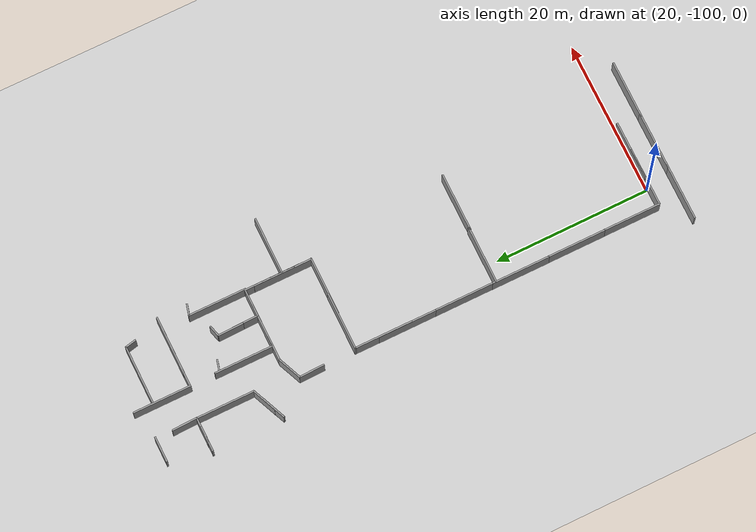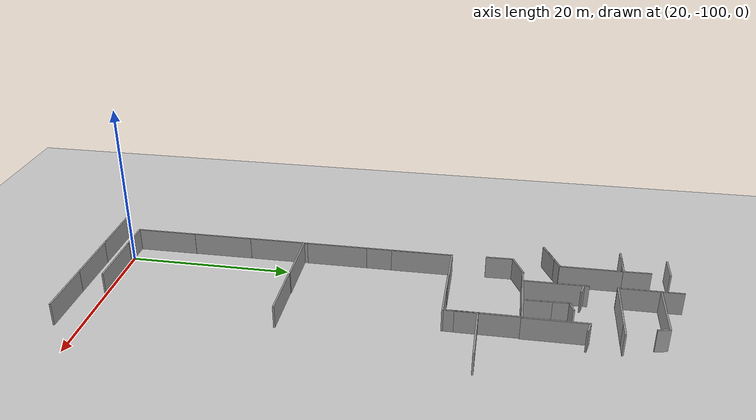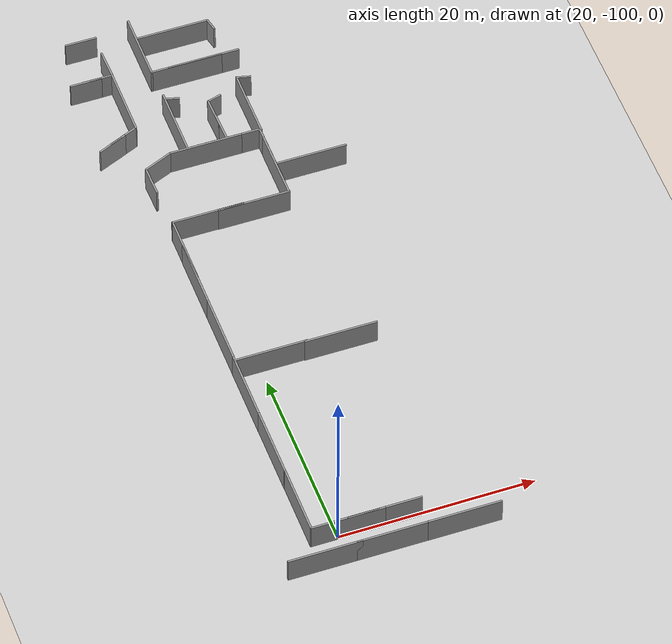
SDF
<sdf version="1.7">
 <world name="default">
  <model name="ground_plane">
   <static>1</static>
   <link name="link">
    <collision name="collision">
     <geometry><plane><normal>0 0 1</normal><size>100 100</size></plane></geometry>
     <surface>
      <contact><collide_bitmask>65535</collide_bitmask></contact>
      <friction><ode><mu>100</mu><mu2>50</mu2></ode></friction>
     </surface>
    </collision>
    <visual name="visual">
     <cast_shadows>0</cast_shadows>
     <geometry><plane><normal>0 0 1</normal><size>100 100</size></plane></geometry>
     <material>
      <script><uri>file://media/materials/scripts/gazebo.material</uri><name>Gazebo/Grey</name></script>
     </material>
    </visual>
   </link>
  </model>
  <model name="half_grey_wall_clone_clone_0_clone_clone_clone_clone_2_clone_clone_1_clone">
   <link name="link">
    <pose>0 0 1.4 0 -0 0</pose>
    <inertial>
     <mass>1</mass>
     <inertia><ixx>1</ixx><ixy>0</ixy><ixz>0</ixz><iyy>1</iyy><iyz>0</iyz><izz>1</izz></inertia>
    </inertial>
    <visual name="visual">
     <cast_shadows>0</cast_shadows>
     <geometry><box><size>3.3 0.2 2.8</size></box></geometry>
     <material>
      <script>
       <uri>model://grey_wall/materials/scripts</uri>
       <uri>model://grey_wall/materials/textures</uri>
       <name>vrc/grey_wall</name>
      </script>
      <shader type="pixel"><normal_map>__default__</normal_map></shader>
      <ambient>1 1 1 1</ambient>
      <diffuse>1 1 1 1</diffuse>
      <specular>0 0 0 1</specular>
      <emissive>0 0 0 1</emissive>
     </material>
    </visual>
    <collision name="collision">
     <geometry><box><size>3.3 0.2 2.8</size></box></geometry>
     <surface>
      <friction>
       <ode><mu>1</mu><mu2>1</mu2><fdir1>0 0 0</fdir1><slip1>0</slip1><slip2>0</slip2></ode>
       <torsional>
        <coefficient>1</coefficient>
        <patch_radius>0</patch_radius>
        <surface_radius>0</surface_radius>
        <use_patch_radius>1</use_patch_radius>
        <ode><slip>0</slip></ode>
       </torsional>
      </friction>
      <bounce><restitution_coefficient>0</restitution_coefficient><threshold>1e+06</threshold></bounce>
      <contact>
       <collide_without_contact>0</collide_without_contact>
       <collide_without_contact_bitmask>1</collide_without_contact_bitmask>
       <collide_bitmask>1</collide_bitmask>
       <ode>
        <soft_cfm>0</soft_cfm>
        <soft_erp>0.2</soft_erp>
        <kp>1e+13</kp>
        <kd>1</kd>
        <max_vel>0.01</max_vel>
        <min_depth>0</min_depth>
       </ode>
       <bullet>
        <split_impulse>1</split_impulse>
        <split_impulse_penetration_threshold>-0.01</split_impulse_penetration_threshold>
        <soft_cfm>0</soft_cfm>
        <soft_erp>0.2</soft_erp>
        <kp>1e+13</kp>
        <kd>1</kd>
       </bullet>
      </contact>
     </surface>
    </collision>
   </link>
   <static>1</static>
   <pose>16.3179 -34.2697 0 0 -0 3.13943</pose>
  </model>
  <model name="half_grey_wall_clone_clone_0_clone_clone_clone_clone_0_clone_0_clone_clone_1_clone_clone_clone_0_clone">
   <link name="link">
    <pose>0 0 1.4 0 -0 0</pose>
    <inertial>
     <mass>1</mass>
     <inertia><ixx>1</ixx><ixy>0</ixy><ixz>0</ixz><iyy>1</iyy><iyz>0</iyz><izz>1</izz></inertia>
    </inertial>
    <visual name="visual">
     <cast_shadows>0</cast_shadows>
     <geometry><box><size>3.3 0.2 2.8</size></box></geometry>
     <material>
      <script>
       <uri>model://grey_wall/materials/scripts</uri>
       <uri>model://grey_wall/materials/textures</uri>
       <name>vrc/grey_wall</name>
      </script>
      <shader type="pixel"><normal_map>__default__</normal_map></shader>
      <ambient>1 1 1 1</ambient>
      <diffuse>1 1 1 1</diffuse>
      <specular>0 0 0 1</specular>
      <emissive>0 0 0 1</emissive>
     </material>
    </visual>
    <collision name="collision">
     <geometry><box><size>3.3 0.2 2.8</size></box></geometry>
     <surface>
      <friction>
       <ode><mu>1</mu><mu2>1</mu2><fdir1>0 0 0</fdir1><slip1>0</slip1><slip2>0</slip2></ode>
       <torsional>
        <coefficient>1</coefficient>
        <patch_radius>0</patch_radius>
        <surface_radius>0</surface_radius>
        <use_patch_radius>1</use_patch_radius>
        <ode><slip>0</slip></ode>
       </torsional>
      </friction>
      <bounce><restitution_coefficient>0</restitution_coefficient><threshold>1e+06</threshold></bounce>
      <contact>
       <collide_without_contact>0</collide_without_contact>
       <collide_without_contact_bitmask>1</collide_without_contact_bitmask>
       <collide_bitmask>1</collide_bitmask>
       <ode>
        <soft_cfm>0</soft_cfm>
        <soft_erp>0.2</soft_erp>
        <kp>1e+13</kp>
        <kd>1</kd>
        <max_vel>0.01</max_vel>
        <min_depth>0</min_depth>
       </ode>
       <bullet>
        <split_impulse>1</split_impulse>
        <split_impulse_penetration_threshold>-0.01</split_impulse_penetration_threshold>
        <soft_cfm>0</soft_cfm>
        <soft_erp>0.2</soft_erp>
        <kp>1e+13</kp>
        <kd>1</kd>
       </bullet>
      </contact>
     </surface>
    </collision>
   </link>
   <static>1</static>
   <pose>17.8257 -38.046 -0 0 0 -1.5482</pose>
  </model>
  <model name="half_grey_wall_clone_clone_0_clone_clone_clone_clone_2_clone_clone_1_clone_clone">
   <link name="link">
    <pose>0 0 1.4 0 -0 0</pose>
    <inertial>
     <mass>1</mass>
     <inertia><ixx>1</ixx><ixy>0</ixy><ixz>0</ixz><iyy>1</iyy><iyz>0</iyz><izz>1</izz></inertia>
    </inertial>
    <visual name="visual">
     <cast_shadows>0</cast_shadows>
     <geometry><box><size>3.3 0.2 2.8</size></box></geometry>
     <material>
      <script>
       <uri>model://grey_wall/materials/scripts</uri>
       <uri>model://grey_wall/materials/textures</uri>
       <name>vrc/grey_wall</name>
      </script>
      <shader type="pixel"><normal_map>__default__</normal_map></shader>
      <ambient>1 1 1 1</ambient>
      <diffuse>1 1 1 1</diffuse>
      <specular>0 0 0 1</specular>
      <emissive>0 0 0 1</emissive>
     </material>
    </visual>
    <collision name="collision">
     <geometry><box><size>3.3 0.2 2.8</size></box></geometry>
     <surface>
      <friction>
       <ode><mu>1</mu><mu2>1</mu2><fdir1>0 0 0</fdir1><slip1>0</slip1><slip2>0</slip2></ode>
       <torsional>
        <coefficient>1</coefficient>
        <patch_radius>0</patch_radius>
        <surface_radius>0</surface_radius>
        <use_patch_radius>1</use_patch_radius>
        <ode><slip>0</slip></ode>
       </torsional>
      </friction>
      <bounce><restitution_coefficient>0</restitution_coefficient><threshold>1e+06</threshold></bounce>
      <contact>
       <collide_without_contact>0</collide_without_contact>
       <collide_without_contact_bitmask>1</collide_without_contact_bitmask>
       <collide_bitmask>1</collide_bitmask>
       <ode>
        <soft_cfm>0</soft_cfm>
        <soft_erp>0.2</soft_erp>
        <kp>1e+13</kp>
        <kd>1</kd>
        <max_vel>0.01</max_vel>
        <min_depth>0</min_depth>
       </ode>
       <bullet>
        <split_impulse>1</split_impulse>
        <split_impulse_penetration_threshold>-0.01</split_impulse_penetration_threshold>
        <soft_cfm>0</soft_cfm>
        <soft_erp>0.2</soft_erp>
        <kp>1e+13</kp>
        <kd>1</kd>
       </bullet>
      </contact>
     </surface>
    </collision>
   </link>
   <static>1</static>
   <pose>16.2913 -39.6173 0 0 -0 3.13943</pose>
  </model>
  <model name="half_grey_wall_clone_clone_0_clone_clone_clone_clone_2_clone_clone_1_clone_clone_0">
   <link name="link">
    <pose>0 0 1.4 0 -0 0</pose>
    <inertial>
     <mass>1</mass>
     <inertia><ixx>1</ixx><ixy>0</ixy><ixz>0</ixz><iyy>1</iyy><iyz>0</iyz><izz>1</izz></inertia>
    </inertial>
    <visual name="visual">
     <cast_shadows>0</cast_shadows>
     <geometry><box><size>3.3 0.2 2.8</size></box></geometry>
     <material>
      <script>
       <uri>model://grey_wall/materials/scripts</uri>
       <uri>model://grey_wall/materials/textures</uri>
       <name>vrc/grey_wall</name>
      </script>
      <shader type="pixel"><normal_map>__default__</normal_map></shader>
      <ambient>1 1 1 1</ambient>
      <diffuse>1 1 1 1</diffuse>
      <specular>0 0 0 1</specular>
      <emissive>0 0 0 1</emissive>
     </material>
    </visual>
    <collision name="collision">
     <geometry><box><size>3.3 0.2 2.8</size></box></geometry>
     <surface>
      <friction>
       <ode><mu>1</mu><mu2>1</mu2><fdir1>0 0 0</fdir1><slip1>0</slip1><slip2>0</slip2></ode>
       <torsional>
        <coefficient>1</coefficient>
        <patch_radius>0</patch_radius>
        <surface_radius>0</surface_radius>
        <use_patch_radius>1</use_patch_radius>
        <ode><slip>0</slip></ode>
       </torsional>
      </friction>
      <bounce><restitution_coefficient>0</restitution_coefficient><threshold>1e+06</threshold></bounce>
      <contact>
       <collide_without_contact>0</collide_without_contact>
       <collide_without_contact_bitmask>1</collide_without_contact_bitmask>
       <collide_bitmask>1</collide_bitmask>
       <ode>
        <soft_cfm>0</soft_cfm>
        <soft_erp>0.2</soft_erp>
        <kp>1e+13</kp>
        <kd>1</kd>
        <max_vel>0.01</max_vel>
        <min_depth>0</min_depth>
       </ode>
       <bullet>
        <split_impulse>1</split_impulse>
        <split_impulse_penetration_threshold>-0.01</split_impulse_penetration_threshold>
        <soft_cfm>0</soft_cfm>
        <soft_erp>0.2</soft_erp>
        <kp>1e+13</kp>
        <kd>1</kd>
       </bullet>
      </contact>
     </surface>
    </collision>
   </link>
   <static>1</static>
   <pose>15.0801 -39.6374 0 0 -0 3.13943</pose>
  </model>
  <model name="grey_wall_0_clone_clone_clone_0_clone_clone_clone_0">
   <static>1</static>
   <link name="link">
    <pose>0 0 1.4 0 -0 0</pose>
    <collision name="collision"><geometry><box><size>7.5 0.2 2.8</size></box></geometry></collision>
    <visual name="visual">
     <cast_shadows>0</cast_shadows>
     <geometry><box><size>7.5 0.2 2.8</size></box></geometry>
     <material>
      <script>
       <uri>model://grey_wall/materials/scripts</uri>
       <uri>model://grey_wall/materials/textures</uri>
       <name>vrc/grey_wall</name>
      </script>
     </material>
    </visual>
   </link>
   <pose>17.8497 -43.3396 0 0 -0 1.5708</pose>
  </model>
  <model name="half_grey_wall_clone_clone_0_clone_clone_clone_clone_0_clone_1">
   <link name="link">
    <pose>0 0 1.4 0 -0 0</pose>
    <inertial>
     <mass>1</mass>
     <inertia><ixx>1</ixx><ixy>0</ixy><ixz>0</ixz><iyy>1</iyy><iyz>0</iyz><izz>1</izz></inertia>
    </inertial>
    <visual name="visual">
     <cast_shadows>0</cast_shadows>
     <geometry><box><size>3.3 0.2 2.8</size></box></geometry>
     <material>
      <script>
       <uri>model://grey_wall/materials/scripts</uri>
       <uri>model://grey_wall/materials/textures</uri>
       <name>vrc/grey_wall</name>
      </script>
      <shader type="pixel"><normal_map>__default__</normal_map></shader>
      <ambient>1 1 1 1</ambient>
      <diffuse>1 1 1 1</diffuse>
      <specular>0 0 0 1</specular>
      <emissive>0 0 0 1</emissive>
     </material>
    </visual>
    <collision name="collision">
     <geometry><box><size>3.3 0.2 2.8</size></box></geometry>
     <surface>
      <friction>
       <ode><mu>1</mu><mu2>1</mu2><fdir1>0 0 0</fdir1><slip1>0</slip1><slip2>0</slip2></ode>
       <torsional>
        <coefficient>1</coefficient>
        <patch_radius>0</patch_radius>
        <surface_radius>0</surface_radius>
        <use_patch_radius>1</use_patch_radius>
        <ode><slip>0</slip></ode>
       </torsional>
      </friction>
      <bounce><restitution_coefficient>0</restitution_coefficient><threshold>1e+06</threshold></bounce>
      <contact>
       <collide_without_contact>0</collide_without_contact>
       <collide_without_contact_bitmask>1</collide_without_contact_bitmask>
       <collide_bitmask>1</collide_bitmask>
       <ode>
        <soft_cfm>0</soft_cfm>
        <soft_erp>0.2</soft_erp>
        <kp>1e+13</kp>
        <kd>1</kd>
        <max_vel>0.01</max_vel>
        <min_depth>0</min_depth>
       </ode>
       <bullet>
        <split_impulse>1</split_impulse>
        <split_impulse_penetration_threshold>-0.01</split_impulse_penetration_threshold>
        <soft_cfm>0</soft_cfm>
        <soft_erp>0.2</soft_erp>
        <kp>1e+13</kp>
        <kd>1</kd>
       </bullet>
      </contact>
     </surface>
    </collision>
   </link>
   <static>1</static>
   <pose>16.2971 -47.683 0 0 0 -2.74169</pose>
  </model>
  <model name="half_grey_wall_clone_clone_0_clone_clone_clone_clone_0_clone_1_clone">
   <link name="link">
    <pose>0 0 1.4 0 -0 0</pose>
    <inertial>
     <mass>1</mass>
     <inertia><ixx>1</ixx><ixy>0</ixy><ixz>0</ixz><iyy>1</iyy><iyz>0</iyz><izz>1</izz></inertia>
    </inertial>
    <visual name="visual">
     <cast_shadows>0</cast_shadows>
     <geometry><box><size>3.3 0.2 2.8</size></box></geometry>
     <material>
      <script>
       <uri>model://grey_wall/materials/scripts</uri>
       <uri>model://grey_wall/materials/textures</uri>
       <name>vrc/grey_wall</name>
      </script>
      <shader type="pixel"><normal_map>__default__</normal_map></shader>
      <ambient>1 1 1 1</ambient>
      <diffuse>1 1 1 1</diffuse>
      <specular>0 0 0 1</specular>
      <emissive>0 0 0 1</emissive>
     </material>
    </visual>
    <collision name="collision">
     <geometry><box><size>3.3 0.2 2.8</size></box></geometry>
     <surface>
      <friction>
       <ode><mu>1</mu><mu2>1</mu2><fdir1>0 0 0</fdir1><slip1>0</slip1><slip2>0</slip2></ode>
       <torsional>
        <coefficient>1</coefficient>
        <patch_radius>0</patch_radius>
        <surface_radius>0</surface_radius>
        <use_patch_radius>1</use_patch_radius>
        <ode><slip>0</slip></ode>
       </torsional>
      </friction>
      <bounce><restitution_coefficient>0</restitution_coefficient><threshold>1e+06</threshold></bounce>
      <contact>
       <collide_without_contact>0</collide_without_contact>
       <collide_without_contact_bitmask>1</collide_without_contact_bitmask>
       <collide_bitmask>1</collide_bitmask>
       <ode>
        <soft_cfm>0</soft_cfm>
        <soft_erp>0.2</soft_erp>
        <kp>1e+13</kp>
        <kd>1</kd>
        <max_vel>0.01</max_vel>
        <min_depth>0</min_depth>
       </ode>
       <bullet>
        <split_impulse>1</split_impulse>
        <split_impulse_penetration_threshold>-0.01</split_impulse_penetration_threshold>
        <soft_cfm>0</soft_cfm>
        <soft_erp>0.2</soft_erp>
        <kp>1e+13</kp>
        <kd>1</kd>
       </bullet>
      </contact>
     </surface>
    </collision>
   </link>
   <static>1</static>
   <pose>14.9934 -48.2522 0 0 0 -2.74169</pose>
  </model>
  <model name="grey_wall_0_clone_0_clone_clone_clone_0_clone_clone_0">
   <static>1</static>
   <link name="link">
    <pose>0 0 1.4 0 -0 0</pose>
    <collision name="collision"><geometry><box><size>7.5 0.2 2.8</size></box></geometry></collision>
    <visual name="visual">
     <cast_shadows>0</cast_shadows>
     <geometry><box><size>7.5 0.2 2.8</size></box></geometry>
     <material>
      <script>
       <uri>model://grey_wall/materials/scripts</uri>
       <uri>model://grey_wall/materials/textures</uri>
       <name>vrc/grey_wall</name>
      </script>
     </material>
    </visual>
   </link>
   <pose>17.2834 -96.452 0 0 -0 1.5708</pose>
  </model>
  <model name="grey_wall_0_clone_0_clone_clone_clone_0_clone_clone_1">
   <static>1</static>
   <link name="link">
    <pose>0 0 1.4 0 -0 0</pose>
    <collision name="collision"><geometry><box><size>7.5 0.2 2.8</size></box></geometry></collision>
    <visual name="visual">
     <cast_shadows>0</cast_shadows>
     <geometry><box><size>7.5 0.2 2.8</size></box></geometry>
     <material>
      <script>
       <uri>model://grey_wall/materials/scripts</uri>
       <uri>model://grey_wall/materials/textures</uri>
       <name>vrc/grey_wall</name>
      </script>
     </material>
    </visual>
   </link>
   <pose>17.2702 -89.111 0 0 -0 1.5708</pose>
  </model>
  <model name="grey_wall_0_clone_0_clone_clone_clone_0_clone_clone_2">
   <static>1</static>
   <link name="link">
    <pose>0 0 1.4 0 -0 0</pose>
    <collision name="collision"><geometry><box><size>7.5 0.2 2.8</size></box></geometry></collision>
    <visual name="visual">
     <cast_shadows>0</cast_shadows>
     <geometry><box><size>7.5 0.2 2.8</size></box></geometry>
     <material>
      <script>
       <uri>model://grey_wall/materials/scripts</uri>
       <uri>model://grey_wall/materials/textures</uri>
       <name>vrc/grey_wall</name>
      </script>
     </material>
    </visual>
   </link>
   <pose>17.2603 -81.7172 0 0 -0 1.5708</pose>
  </model>
  <model name="grey_wall_0_clone_0_clone_clone_clone_0_clone_clone_3">
   <static>1</static>
   <link name="link">
    <pose>0 0 1.4 0 -0 0</pose>
    <collision name="collision"><geometry><box><size>7.5 0.2 2.8</size></box></geometry></collision>
    <visual name="visual">
     <cast_shadows>0</cast_shadows>
     <geometry><box><size>7.5 0.2 2.8</size></box></geometry>
     <material>
      <script>
       <uri>model://grey_wall/materials/scripts</uri>
       <uri>model://grey_wall/materials/textures</uri>
       <name>vrc/grey_wall</name>
      </script>
     </material>
    </visual>
   </link>
   <pose>17.2749 -74.2708 0 0 -0 1.5708</pose>
  </model>
  <model name="grey_wall_0_clone_0_clone_clone_clone_0_clone_clone_4">
   <static>1</static>
   <link name="link">
    <pose>0 0 1.4 0 -0 0</pose>
    <collision name="collision"><geometry><box><size>7.5 0.2 2.8</size></box></geometry></collision>
    <visual name="visual">
     <cast_shadows>0</cast_shadows>
     <geometry><box><size>7.5 0.2 2.8</size></box></geometry>
     <material>
      <script>
       <uri>model://grey_wall/materials/scripts</uri>
       <uri>model://grey_wall/materials/textures</uri>
       <name>vrc/grey_wall</name>
      </script>
     </material>
    </visual>
   </link>
   <pose>17.2771 -66.7874 0 0 -0 1.5708</pose>
  </model>
  <model name="grey_wall_0_clone_0_clone_clone_clone_0_clone_clone_5">
   <static>1</static>
   <link name="link">
    <pose>0 0 1.4 0 -0 0</pose>
    <collision name="collision"><geometry><box><size>7.5 0.2 2.8</size></box></geometry></collision>
    <visual name="visual">
     <cast_shadows>0</cast_shadows>
     <geometry><box><size>7.5 0.2 2.8</size></box></geometry>
     <material>
      <script>
       <uri>model://grey_wall/materials/scripts</uri>
       <uri>model://grey_wall/materials/textures</uri>
       <name>vrc/grey_wall</name>
      </script>
     </material>
    </visual>
   </link>
   <pose>17.2995 -63.6502 0 0 -0 1.5708</pose>
  </model>
  <model name="grey_wall_1_clone_clone_1_clone_clone_0_clone">
   <static>1</static>
   <link name="link">
    <pose>0 0 1.4 0 -0 0</pose>
    <collision name="collision"><geometry><box><size>7.5 0.2 2.8</size></box></geometry></collision>
    <visual name="visual">
     <cast_shadows>0</cast_shadows>
     <geometry><box><size>7.5 0.2 2.8</size></box></geometry>
     <material>
      <script>
       <uri>model://grey_wall/materials/scripts</uri>
       <uri>model://grey_wall/materials/textures</uri>
       <name>vrc/grey_wall</name>
      </script>
     </material>
    </visual>
   </link>
   <pose>20.936 -59.9689 0 0 -0 0</pose>
  </model>
  <model name="grey_wall_1_clone_clone_1_clone_clone_0_clone_clone">
   <static>1</static>
   <link name="link">
    <pose>0 0 1.4 0 -0 0</pose>
    <collision name="collision"><geometry><box><size>7.5 0.2 2.8</size></box></geometry></collision>
    <visual name="visual">
     <cast_shadows>0</cast_shadows>
     <geometry><box><size>7.5 0.2 2.8</size></box></geometry>
     <material>
      <script>
       <uri>model://grey_wall/materials/scripts</uri>
       <uri>model://grey_wall/materials/textures</uri>
       <name>vrc/grey_wall</name>
      </script>
     </material>
    </visual>
   </link>
   <pose>20.9298 -78.4867 0 0 -0 0</pose>
  </model>
  <model name="grey_wall_1_clone_clone_1_clone_clone_0_clone_clone_0">
   <static>1</static>
   <link name="link">
    <pose>0 0 1.4 0 -0 0</pose>
    <collision name="collision"><geometry><box><size>7.5 0.2 2.8</size></box></geometry></collision>
    <visual name="visual">
     <cast_shadows>0</cast_shadows>
     <geometry><box><size>7.5 0.2 2.8</size></box></geometry>
     <material>
      <script>
       <uri>model://grey_wall/materials/scripts</uri>
       <uri>model://grey_wall/materials/textures</uri>
       <name>vrc/grey_wall</name>
      </script>
     </material>
    </visual>
   </link>
   <pose>28.0932 -78.5565 0 0 -0 0</pose>
  </model>
  <model name="grey_wall_1_clone_clone_1_clone_clone_0_clone_clone_clone">
   <static>1</static>
   <link name="link">
    <pose>0 0 1.4 0 -0 0</pose>
    <collision name="collision"><geometry><box><size>7.5 0.2 2.8</size></box></geometry></collision>
    <visual name="visual">
     <cast_shadows>0</cast_shadows>
     <geometry><box><size>7.5 0.2 2.8</size></box></geometry>
     <material>
      <script>
       <uri>model://grey_wall/materials/scripts</uri>
       <uri>model://grey_wall/materials/textures</uri>
       <name>vrc/grey_wall</name>
      </script>
     </material>
    </visual>
   </link>
   <pose>21.0061 -100.155 0 0 -0 0</pose>
  </model>
  <model name="grey_wall_1_clone_clone_1_clone_clone_0_clone_clone_clone_0">
   <static>1</static>
   <link name="link">
    <pose>0 0 1.4 0 -0 0</pose>
    <collision name="collision"><geometry><box><size>7.5 0.2 2.8</size></box></geometry></collision>
    <visual name="visual">
     <cast_shadows>0</cast_shadows>
     <geometry><box><size>7.5 0.2 2.8</size></box></geometry>
     <material>
      <script>
       <uri>model://grey_wall/materials/scripts</uri>
       <uri>model://grey_wall/materials/textures</uri>
       <name>vrc/grey_wall</name>
      </script>
     </material>
    </visual>
   </link>
   <pose>24.6905 -100.153 0 0 -0 0</pose>
  </model>
  <model name="grey_wall_1_clone_clone_1_clone_clone_0_clone_clone_4">
   <static>1</static>
   <link name="link">
    <pose>0 0 1.4 0 -0 0</pose>
    <collision name="collision"><geometry><box><size>7.5 0.2 2.8</size></box></geometry></collision>
    <visual name="visual">
     <cast_shadows>0</cast_shadows>
     <geometry><box><size>7.5 0.2 2.8</size></box></geometry>
     <material>
      <script>
       <uri>model://grey_wall/materials/scripts</uri>
       <uri>model://grey_wall/materials/textures</uri>
       <name>vrc/grey_wall</name>
      </script>
     </material>
    </visual>
   </link>
   <pose>25.7329 -60.0174 0 0 -0 0</pose>
  </model>
  <model name="grey_wall_1_clone_clone_1_clone_clone_0_clone_clone_clone_0_clone">
   <static>1</static>
   <link name="link">
    <pose>0 0 1.4 0 -0 0</pose>
    <collision name="collision"><geometry><box><size>7.5 0.2 2.8</size></box></geometry></collision>
    <visual name="visual">
     <cast_shadows>0</cast_shadows>
     <geometry><box><size>7.5 0.2 2.8</size></box></geometry>
     <material>
      <script>
       <uri>model://grey_wall/materials/scripts</uri>
       <uri>model://grey_wall/materials/textures</uri>
       <name>vrc/grey_wall</name>
      </script>
     </material>
    </visual>
   </link>
   <pose>17.6268 -103.146 0 0 -0 0</pose>
  </model>
  <model name="grey_wall_1_clone_clone_1_clone_clone_0_clone_clone_clone_0_clone_0">
   <static>1</static>
   <link name="link">
    <pose>0 0 1.4 0 -0 0</pose>
    <collision name="collision"><geometry><box><size>7.5 0.2 2.8</size></box></geometry></collision>
    <visual name="visual">
     <cast_shadows>0</cast_shadows>
     <geometry><box><size>7.5 0.2 2.8</size></box></geometry>
     <material>
      <script>
       <uri>model://grey_wall/materials/scripts</uri>
       <uri>model://grey_wall/materials/textures</uri>
       <name>vrc/grey_wall</name>
      </script>
     </material>
    </visual>
   </link>
   <pose>24.5496 -103.146 0 0 -0 0</pose>
  </model>
  <model name="grey_wall_1_clone_clone_1_clone_clone_0_clone_clone_clone_0_clone_1">
   <static>1</static>
   <link name="link">
    <pose>0 0 1.4 0 -0 0</pose>
    <collision name="collision"><geometry><box><size>7.5 0.2 2.8</size></box></geometry></collision>
    <visual name="visual">
     <cast_shadows>0</cast_shadows>
     <geometry><box><size>7.5 0.2 2.8</size></box></geometry>
     <material>
      <script>
       <uri>model://grey_wall/materials/scripts</uri>
       <uri>model://grey_wall/materials/textures</uri>
       <name>vrc/grey_wall</name>
      </script>
     </material>
    </visual>
   </link>
   <pose>31.6512 -103.153 0 0 -0 0</pose>
  </model>
  <model name="grey_wall_0_clone_0_clone_clone_clone_0_clone_clone_clone_0_clone">
   <static>1</static>
   <link name="link">
    <pose>0 0 1.4 0 -0 0</pose>
    <collision name="collision"><geometry><box><size>7.5 0.2 2.8</size></box></geometry></collision>
    <visual name="visual">
     <cast_shadows>0</cast_shadows>
     <geometry><box><size>7.5 0.2 2.8</size></box></geometry>
     <material>
      <script>
       <uri>model://grey_wall/materials/scripts</uri>
       <uri>model://grey_wall/materials/textures</uri>
       <name>vrc/grey_wall</name>
      </script>
     </material>
    </visual>
   </link>
   <pose>29.3494 -56.244 0 0 -0 1.5708</pose>
  </model>
  <model name="half_grey_wall_clone_clone_0_clone_clone_clone_clone_0_clone_0_clone_clone_1_clone_clone_clone_0_clone_1">
   <link name="link">
    <pose>0 0 1.4 0 -0 0</pose>
    <inertial>
     <mass>1</mass>
     <inertia><ixx>1</ixx><ixy>0</ixy><ixz>0</ixz><iyy>1</iyy><iyz>0</iyz><izz>1</izz></inertia>
    </inertial>
    <visual name="visual">
     <cast_shadows>0</cast_shadows>
     <geometry><box><size>3.3 0.2 2.8</size></box></geometry>
     <material>
      <script>
       <uri>model://grey_wall/materials/scripts</uri>
       <uri>model://grey_wall/materials/textures</uri>
       <name>vrc/grey_wall</name>
      </script>
      <shader type="pixel"><normal_map>__default__</normal_map></shader>
      <ambient>1 1 1 1</ambient>
      <diffuse>1 1 1 1</diffuse>
      <specular>0 0 0 1</specular>
      <emissive>0 0 0 1</emissive>
     </material>
    </visual>
    <collision name="collision">
     <geometry><box><size>3.3 0.2 2.8</size></box></geometry>
     <surface>
      <friction>
       <ode><mu>1</mu><mu2>1</mu2><fdir1>0 0 0</fdir1><slip1>0</slip1><slip2>0</slip2></ode>
       <torsional>
        <coefficient>1</coefficient>
        <patch_radius>0</patch_radius>
        <surface_radius>0</surface_radius>
        <use_patch_radius>1</use_patch_radius>
        <ode><slip>0</slip></ode>
       </torsional>
      </friction>
      <bounce><restitution_coefficient>0</restitution_coefficient><threshold>1e+06</threshold></bounce>
      <contact>
       <collide_without_contact>0</collide_without_contact>
       <collide_without_contact_bitmask>1</collide_without_contact_bitmask>
       <collide_bitmask>1</collide_bitmask>
       <ode>
        <soft_cfm>0</soft_cfm>
        <soft_erp>0.2</soft_erp>
        <kp>1e+13</kp>
        <kd>1</kd>
        <max_vel>0.01</max_vel>
        <min_depth>0</min_depth>
       </ode>
       <bullet>
        <split_impulse>1</split_impulse>
        <split_impulse_penetration_threshold>-0.01</split_impulse_penetration_threshold>
        <soft_cfm>0</soft_cfm>
        <soft_erp>0.2</soft_erp>
        <kp>1e+13</kp>
        <kd>1</kd>
       </bullet>
      </contact>
     </surface>
    </collision>
   </link>
   <static>1</static>
   <pose>17.0625 -54.1905 -0 0 0 -1.5482</pose>
  </model>
  <model name="half_grey_wall_clone_clone_0_clone_clone_clone_clone_0_clone_1_clone_clone">
   <link name="link">
    <pose>0 0 1.4 0 -0 0</pose>
    <inertial>
     <mass>1</mass>
     <inertia><ixx>1</ixx><ixy>0</ixy><ixz>0</ixz><iyy>1</iyy><iyz>0</iyz><izz>1</izz></inertia>
    </inertial>
    <visual name="visual">
     <cast_shadows>0</cast_shadows>
     <geometry><box><size>3.3 0.2 2.8</size></box></geometry>
     <material>
      <script>
       <uri>model://grey_wall/materials/scripts</uri>
       <uri>model://grey_wall/materials/textures</uri>
       <name>vrc/grey_wall</name>
      </script>
      <shader type="pixel"><normal_map>__default__</normal_map></shader>
      <ambient>1 1 1 1</ambient>
      <diffuse>1 1 1 1</diffuse>
      <specular>0 0 0 1</specular>
      <emissive>0 0 0 1</emissive>
     </material>
    </visual>
    <collision name="collision">
     <geometry><box><size>3.3 0.2 2.8</size></box></geometry>
     <surface>
      <friction>
       <ode><mu>1</mu><mu2>1</mu2><fdir1>0 0 0</fdir1><slip1>0</slip1><slip2>0</slip2></ode>
       <torsional>
        <coefficient>1</coefficient>
        <patch_radius>0</patch_radius>
        <surface_radius>0</surface_radius>
        <use_patch_radius>1</use_patch_radius>
        <ode><slip>0</slip></ode>
       </torsional>
      </friction>
      <bounce><restitution_coefficient>0</restitution_coefficient><threshold>1e+06</threshold></bounce>
      <contact>
       <collide_without_contact>0</collide_without_contact>
       <collide_without_contact_bitmask>1</collide_without_contact_bitmask>
       <collide_bitmask>1</collide_bitmask>
       <ode>
        <soft_cfm>0</soft_cfm>
        <soft_erp>0.2</soft_erp>
        <kp>1e+13</kp>
        <kd>1</kd>
        <max_vel>0.01</max_vel>
        <min_depth>0</min_depth>
       </ode>
       <bullet>
        <split_impulse>1</split_impulse>
        <split_impulse_penetration_threshold>-0.01</split_impulse_penetration_threshold>
        <soft_cfm>0</soft_cfm>
        <soft_erp>0.2</soft_erp>
        <kp>1e+13</kp>
        <kd>1</kd>
       </bullet>
      </contact>
     </surface>
    </collision>
   </link>
   <static>1</static>
   <pose>18.5006 -51.9756 0 0 0 -2.74169</pose>
  </model>
  <model name="grey_wall_1_clone_clone_1_clone_clone_0_clone_clone_7_clone">
   <static>1</static>
   <link name="link">
    <pose>0 0 1.4 0 -0 0</pose>
    <collision name="collision"><geometry><box><size>7.5 0.2 2.8</size></box></geometry></collision>
    <visual name="visual">
     <cast_shadows>0</cast_shadows>
     <geometry><box><size>7.5 0.2 2.8</size></box></geometry>
     <material>
      <script>
       <uri>model://grey_wall/materials/scripts</uri>
       <uri>model://grey_wall/materials/textures</uri>
       <name>vrc/grey_wall</name>
      </script>
     </material>
    </visual>
   </link>
   <pose>23.6928 -51.3593 0 0 -0 0</pose>
  </model>
  <model name="grey_wall_0_clone_0_clone_clone_clone_0_clone_clone_clone_0_clone_clone">
   <static>1</static>
   <link name="link">
    <pose>0 0 1.4 0 -0 0</pose>
    <collision name="collision"><geometry><box><size>7.5 0.2 2.8</size></box></geometry></collision>
    <visual name="visual">
     <cast_shadows>0</cast_shadows>
     <geometry><box><size>7.5 0.2 2.8</size></box></geometry>
     <material>
      <script>
       <uri>model://grey_wall/materials/scripts</uri>
       <uri>model://grey_wall/materials/textures</uri>
       <name>vrc/grey_wall</name>
      </script>
     </material>
    </visual>
   </link>
   <pose>29.3649 -54.9896 0 0 -0 1.5708</pose>
  </model>
  <model name="grey_wall_1_clone_clone_1_clone_clone_0_clone_clone_7_clone_clone">
   <static>1</static>
   <link name="link">
    <pose>0 0 1.4 0 -0 0</pose>
    <collision name="collision"><geometry><box><size>7.5 0.2 2.8</size></box></geometry></collision>
    <visual name="visual">
     <cast_shadows>0</cast_shadows>
     <geometry><box><size>7.5 0.2 2.8</size></box></geometry>
     <material>
      <script>
       <uri>model://grey_wall/materials/scripts</uri>
       <uri>model://grey_wall/materials/textures</uri>
       <name>vrc/grey_wall</name>
      </script>
     </material>
    </visual>
   </link>
   <pose>25.6026 -51.3536 0 0 -0 0</pose>
  </model>
  <model name="grey_wall_0_clone_clone_clone_0_clone_clone_clone_0_clone">
   <static>1</static>
   <link name="link">
    <pose>0 0 1.4 0 -0 0</pose>
    <collision name="collision"><geometry><box><size>7.5 0.2 2.8</size></box></geometry></collision>
    <visual name="visual">
     <cast_shadows>0</cast_shadows>
     <geometry><box><size>7.5 0.2 2.8</size></box></geometry>
     <material>
      <script>
       <uri>model://grey_wall/materials/scripts</uri>
       <uri>model://grey_wall/materials/textures</uri>
       <name>vrc/grey_wall</name>
      </script>
     </material>
    </visual>
   </link>
   <pose>21.7977 -47.5496 0 0 -0 1.5708</pose>
  </model>
  <model name="grey_wall_1_clone_clone_1_clone_clone_0_clone_clone_7_clone_clone_clone_clone">
   <static>1</static>
   <link name="link">
    <pose>0 0 1.4 0 -0 0</pose>
    <collision name="collision"><geometry><box><size>7.5 0.2 2.8</size></box></geometry></collision>
    <visual name="visual">
     <cast_shadows>0</cast_shadows>
     <geometry><box><size>7.5 0.2 2.8</size></box></geometry>
     <material>
      <script>
       <uri>model://grey_wall/materials/scripts</uri>
       <uri>model://grey_wall/materials/textures</uri>
       <name>vrc/grey_wall</name>
      </script>
     </material>
    </visual>
   </link>
   <pose>33.0056 -56.1711 0 0 -0 0</pose>
  </model>
  <model name="grey_wall_0_clone_clone_clone_0_clone_clone_clone_0_clone_0_clone_clone_1_clone">
   <static>1</static>
   <link name="link">
    <pose>0 0 1.4 0 -0 0</pose>
    <collision name="collision"><geometry><box><size>7.5 0.2 2.8</size></box></geometry></collision>
    <visual name="visual">
     <cast_shadows>0</cast_shadows>
     <geometry><box><size>7.5 0.2 2.8</size></box></geometry>
     <material>
      <script>
       <uri>model://grey_wall/materials/scripts</uri>
       <uri>model://grey_wall/materials/textures</uri>
       <name>vrc/grey_wall</name>
      </script>
     </material>
    </visual>
   </link>
   <pose>29.4729 -47.7356 0 0 -0 1.5708</pose>
  </model>
  <model name="half_grey_wall_clone_clone_0_clone_clone_clone_clone_0_clone_0_clone_clone_1_clone_clone_clone_0_clone_2">
   <link name="link">
    <pose>0 0 1.4 0 -0 0</pose>
    <inertial>
     <mass>1</mass>
     <inertia><ixx>1</ixx><ixy>0</ixy><ixz>0</ixz><iyy>1</iyy><iyz>0</iyz><izz>1</izz></inertia>
    </inertial>
    <visual name="visual">
     <cast_shadows>0</cast_shadows>
     <geometry><box><size>3.3 0.2 2.8</size></box></geometry>
     <material>
      <script>
       <uri>model://grey_wall/materials/scripts</uri>
       <uri>model://grey_wall/materials/textures</uri>
       <name>vrc/grey_wall</name>
      </script>
      <shader type="pixel"><normal_map>__default__</normal_map></shader>
      <ambient>1 1 1 1</ambient>
      <diffuse>1 1 1 1</diffuse>
      <specular>0 0 0 1</specular>
      <emissive>0 0 0 1</emissive>
     </material>
    </visual>
    <collision name="collision">
     <geometry><box><size>3.3 0.2 2.8</size></box></geometry>
     <surface>
      <friction>
       <ode><mu>1</mu><mu2>1</mu2><fdir1>0 0 0</fdir1><slip1>0</slip1><slip2>0</slip2></ode>
       <torsional>
        <coefficient>1</coefficient>
        <patch_radius>0</patch_radius>
        <surface_radius>0</surface_radius>
        <use_patch_radius>1</use_patch_radius>
        <ode><slip>0</slip></ode>
       </torsional>
      </friction>
      <bounce><restitution_coefficient>0</restitution_coefficient><threshold>1e+06</threshold></bounce>
      <contact>
       <collide_without_contact>0</collide_without_contact>
       <collide_without_contact_bitmask>1</collide_without_contact_bitmask>
       <collide_bitmask>1</collide_bitmask>
       <ode>
        <soft_cfm>0</soft_cfm>
        <soft_erp>0.2</soft_erp>
        <kp>1e+13</kp>
        <kd>1</kd>
        <max_vel>0.01</max_vel>
        <min_depth>0</min_depth>
       </ode>
       <bullet>
        <split_impulse>1</split_impulse>
        <split_impulse_penetration_threshold>-0.01</split_impulse_penetration_threshold>
        <soft_cfm>0</soft_cfm>
        <soft_erp>0.2</soft_erp>
        <kp>1e+13</kp>
        <kd>1</kd>
       </bullet>
      </contact>
     </surface>
    </collision>
   </link>
   <static>1</static>
   <pose>25.8488 -49.6934 -0 0 0 -1.5482</pose>
  </model>
  <model name="half_grey_wall_clone_clone_0_clone_clone_clone_clone_0_clone_0_clone_clone_1_clone_clone_clone_0_clone_3">
   <link name="link">
    <pose>0 0 1.4 0 -0 0</pose>
    <inertial>
     <mass>1</mass>
     <inertia><ixx>1</ixx><ixy>0</ixy><ixz>0</ixz><iyy>1</iyy><iyz>0</iyz><izz>1</izz></inertia>
    </inertial>
    <visual name="visual">
     <cast_shadows>0</cast_shadows>
     <geometry><box><size>3.3 0.2 2.8</size></box></geometry>
     <material>
      <script>
       <uri>model://grey_wall/materials/scripts</uri>
       <uri>model://grey_wall/materials/textures</uri>
       <name>vrc/grey_wall</name>
      </script>
      <shader type="pixel"><normal_map>__default__</normal_map></shader>
      <ambient>1 1 1 1</ambient>
      <diffuse>1 1 1 1</diffuse>
      <specular>0 0 0 1</specular>
      <emissive>0 0 0 1</emissive>
     </material>
    </visual>
    <collision name="collision">
     <geometry><box><size>3.3 0.2 2.8</size></box></geometry>
     <surface>
      <friction>
       <ode><mu>1</mu><mu2>1</mu2><fdir1>0 0 0</fdir1><slip1>0</slip1><slip2>0</slip2></ode>
       <torsional>
        <coefficient>1</coefficient>
        <patch_radius>0</patch_radius>
        <surface_radius>0</surface_radius>
        <use_patch_radius>1</use_patch_radius>
        <ode><slip>0</slip></ode>
       </torsional>
      </friction>
      <bounce><restitution_coefficient>0</restitution_coefficient><threshold>1e+06</threshold></bounce>
      <contact>
       <collide_without_contact>0</collide_without_contact>
       <collide_without_contact_bitmask>1</collide_without_contact_bitmask>
       <collide_bitmask>1</collide_bitmask>
       <ode>
        <soft_cfm>0</soft_cfm>
        <soft_erp>0.2</soft_erp>
        <kp>1e+13</kp>
        <kd>1</kd>
        <max_vel>0.01</max_vel>
        <min_depth>0</min_depth>
       </ode>
       <bullet>
        <split_impulse>1</split_impulse>
        <split_impulse_penetration_threshold>-0.01</split_impulse_penetration_threshold>
        <soft_cfm>0</soft_cfm>
        <soft_erp>0.2</soft_erp>
        <kp>1e+13</kp>
        <kd>1</kd>
       </bullet>
      </contact>
     </surface>
    </collision>
   </link>
   <static>1</static>
   <pose>25.7924 -47.7728 -0 0 0 -1.5482</pose>
  </model>
  <model name="half_grey_wall_clone_clone_clone_0_clone_clone_0_clone_clone_0_clone_0_clone_9">
   <link name="link">
    <pose>0 0 1.4 0 -0 0</pose>
    <inertial>
     <mass>1</mass>
     <inertia><ixx>1</ixx><ixy>0</ixy><ixz>0</ixz><iyy>1</iyy><iyz>0</iyz><izz>1</izz></inertia>
    </inertial>
    <visual name="visual">
     <cast_shadows>0</cast_shadows>
     <geometry><box><size>1.5 0.2 2.8</size></box></geometry>
     <material>
      <script>
       <uri>model://grey_wall/materials/scripts</uri>
       <uri>model://grey_wall/materials/textures</uri>
       <name>vrc/grey_wall</name>
      </script>
      <shader type="pixel"><normal_map>__default__</normal_map></shader>
      <ambient>1 1 1 1</ambient>
      <diffuse>1 1 1 1</diffuse>
      <specular>0 0 0 1</specular>
      <emissive>0 0 0 1</emissive>
     </material>
    </visual>
    <collision name="collision">
     <geometry><box><size>1.5 0.2 2.8</size></box></geometry>
     <surface>
      <friction>
       <ode><mu>1</mu><mu2>1</mu2><fdir1>0 0 0</fdir1><slip1>0</slip1><slip2>0</slip2></ode>
       <torsional>
        <coefficient>1</coefficient>
        <patch_radius>0</patch_radius>
        <surface_radius>0</surface_radius>
        <use_patch_radius>1</use_patch_radius>
        <ode><slip>0</slip></ode>
       </torsional>
      </friction>
      <bounce><restitution_coefficient>0</restitution_coefficient><threshold>1e+06</threshold></bounce>
      <contact>
       <collide_without_contact>0</collide_without_contact>
       <collide_without_contact_bitmask>1</collide_without_contact_bitmask>
       <collide_bitmask>1</collide_bitmask>
       <ode>
        <soft_cfm>0</soft_cfm>
        <soft_erp>0.2</soft_erp>
        <kp>1e+13</kp>
        <kd>1</kd>
        <max_vel>0.01</max_vel>
        <min_depth>0</min_depth>
       </ode>
       <bullet>
        <split_impulse>1</split_impulse>
        <split_impulse_penetration_threshold>-0.01</split_impulse_penetration_threshold>
        <soft_cfm>0</soft_cfm>
        <soft_erp>0.2</soft_erp>
        <kp>1e+13</kp>
        <kd>1</kd>
       </bullet>
      </contact>
     </surface>
    </collision>
   </link>
   <static>1</static>
   <pose>22.4928 -44.5904 0 0 -0 2.88811</pose>
  </model>
  <model name="half_grey_wall_clone_clone_clone_0_clone_clone_0_clone_clone_0_clone_0_clone_9_clone">
   <link name="link">
    <pose>0 0 1.4 0 -0 0</pose>
    <inertial>
     <mass>1</mass>
     <inertia><ixx>1</ixx><ixy>0</ixy><ixz>0</ixz><iyy>1</iyy><iyz>0</iyz><izz>1</izz></inertia>
    </inertial>
    <visual name="visual">
     <cast_shadows>0</cast_shadows>
     <geometry><box><size>1.5 0.2 2.8</size></box></geometry>
     <material>
      <script>
       <uri>model://grey_wall/materials/scripts</uri>
       <uri>model://grey_wall/materials/textures</uri>
       <name>vrc/grey_wall</name>
      </script>
      <shader type="pixel"><normal_map>__default__</normal_map></shader>
      <ambient>1 1 1 1</ambient>
      <diffuse>1 1 1 1</diffuse>
      <specular>0 0 0 1</specular>
      <emissive>0 0 0 1</emissive>
     </material>
    </visual>
    <collision name="collision">
     <geometry><box><size>1.5 0.2 2.8</size></box></geometry>
     <surface>
      <friction>
       <ode><mu>1</mu><mu2>1</mu2><fdir1>0 0 0</fdir1><slip1>0</slip1><slip2>0</slip2></ode>
       <torsional>
        <coefficient>1</coefficient>
        <patch_radius>0</patch_radius>
        <surface_radius>0</surface_radius>
        <use_patch_radius>1</use_patch_radius>
        <ode><slip>0</slip></ode>
       </torsional>
      </friction>
      <bounce><restitution_coefficient>0</restitution_coefficient><threshold>1e+06</threshold></bounce>
      <contact>
       <collide_without_contact>0</collide_without_contact>
       <collide_without_contact_bitmask>1</collide_without_contact_bitmask>
       <collide_bitmask>1</collide_bitmask>
       <ode>
        <soft_cfm>0</soft_cfm>
        <soft_erp>0.2</soft_erp>
        <kp>1e+13</kp>
        <kd>1</kd>
        <max_vel>0.01</max_vel>
        <min_depth>0</min_depth>
       </ode>
       <bullet>
        <split_impulse>1</split_impulse>
        <split_impulse_penetration_threshold>-0.01</split_impulse_penetration_threshold>
        <soft_cfm>0</soft_cfm>
        <soft_erp>0.2</soft_erp>
        <kp>1e+13</kp>
        <kd>1</kd>
       </bullet>
      </contact>
     </surface>
    </collision>
   </link>
   <static>1</static>
   <pose>26.4834 -45.9487 0 0 0 -2.87494</pose>
  </model>
  <model name="half_grey_wall_clone_clone_clone_0_clone_clone_0_clone_clone_0_clone_0_clone_9_clone_0">
   <link name="link">
    <pose>0 0 1.4 0 -0 0</pose>
    <inertial>
     <mass>1</mass>
     <inertia><ixx>1</ixx><ixy>0</ixy><ixz>0</ixz><iyy>1</iyy><iyz>0</iyz><izz>1</izz></inertia>
    </inertial>
    <visual name="visual">
     <cast_shadows>0</cast_shadows>
     <geometry><box><size>1.5 0.2 2.8</size></box></geometry>
     <material>
      <script>
       <uri>model://grey_wall/materials/scripts</uri>
       <uri>model://grey_wall/materials/textures</uri>
       <name>vrc/grey_wall</name>
      </script>
      <shader type="pixel"><normal_map>__default__</normal_map></shader>
      <ambient>1 1 1 1</ambient>
      <diffuse>1 1 1 1</diffuse>
      <specular>0 0 0 1</specular>
      <emissive>0 0 0 1</emissive>
     </material>
    </visual>
    <collision name="collision">
     <geometry><box><size>1.5 0.2 2.8</size></box></geometry>
     <surface>
      <friction>
       <ode><mu>1</mu><mu2>1</mu2><fdir1>0 0 0</fdir1><slip1>0</slip1><slip2>0</slip2></ode>
       <torsional>
        <coefficient>1</coefficient>
        <patch_radius>0</patch_radius>
        <surface_radius>0</surface_radius>
        <use_patch_radius>1</use_patch_radius>
        <ode><slip>0</slip></ode>
       </torsional>
      </friction>
      <bounce><restitution_coefficient>0</restitution_coefficient><threshold>1e+06</threshold></bounce>
      <contact>
       <collide_without_contact>0</collide_without_contact>
       <collide_without_contact_bitmask>1</collide_without_contact_bitmask>
       <collide_bitmask>1</collide_bitmask>
       <ode>
        <soft_cfm>0</soft_cfm>
        <soft_erp>0.2</soft_erp>
        <kp>1e+13</kp>
        <kd>1</kd>
        <max_vel>0.01</max_vel>
        <min_depth>0</min_depth>
       </ode>
       <bullet>
        <split_impulse>1</split_impulse>
        <split_impulse_penetration_threshold>-0.01</split_impulse_penetration_threshold>
        <soft_cfm>0</soft_cfm>
        <soft_erp>0.2</soft_erp>
        <kp>1e+13</kp>
        <kd>1</kd>
       </bullet>
      </contact>
     </surface>
    </collision>
   </link>
   <static>1</static>
   <pose>30.1523 -44.256 0 0 -0 2.88811</pose>
  </model>
  <model name="grey_wall_0_clone_clone_clone_0_clone_clone_0">
   <static>1</static>
   <link name="link">
    <pose>0 0 1.4 0 -0 0</pose>
    <collision name="collision"><geometry><box><size>7.5 0.2 2.8</size></box></geometry></collision>
    <visual name="visual">
     <cast_shadows>0</cast_shadows>
     <geometry><box><size>7.5 0.2 2.8</size></box></geometry>
     <material>
      <script>
       <uri>model://grey_wall/materials/scripts</uri>
       <uri>model://grey_wall/materials/textures</uri>
       <name>vrc/grey_wall</name>
      </script>
     </material>
    </visual>
   </link>
   <pose>21.6912 -36.9236 0 0 -0 1.5708</pose>
  </model>
  <model name="grey_wall_1_clone_clone_clone_clone_clone_clone_0_clone">
   <static>1</static>
   <link name="link">
    <pose>0 0 1.4 0 -0 0</pose>
    <collision name="collision"><geometry><box><size>7.5 0.2 2.8</size></box></geometry></collision>
    <visual name="visual">
     <cast_shadows>0</cast_shadows>
     <geometry><box><size>7.5 0.2 2.8</size></box></geometry>
     <material>
      <script>
       <uri>model://grey_wall/materials/scripts</uri>
       <uri>model://grey_wall/materials/textures</uri>
       <name>vrc/grey_wall</name>
      </script>
     </material>
    </visual>
   </link>
   <pose>25.3635 -40.5698 0 0 -0 0</pose>
  </model>
  <model name="grey_wall_1_clone_clone_clone_clone_clone_clone_0_clone_0">
   <static>1</static>
   <link name="link">
    <pose>0 0 1.4 0 -0 0</pose>
    <collision name="collision"><geometry><box><size>7.5 0.2 2.8</size></box></geometry></collision>
    <visual name="visual">
     <cast_shadows>0</cast_shadows>
     <geometry><box><size>7.5 0.2 2.8</size></box></geometry>
     <material>
      <script>
       <uri>model://grey_wall/materials/scripts</uri>
       <uri>model://grey_wall/materials/textures</uri>
       <name>vrc/grey_wall</name>
      </script>
     </material>
    </visual>
   </link>
   <pose>27.1923 -40.5624 0 0 -0 0</pose>
  </model>
  <model name="grey_wall_1_clone_clone_clone_clone_clone_clone_0_clone_1">
   <static>1</static>
   <link name="link">
    <pose>0 0 1.4 0 -0 0</pose>
    <collision name="collision"><geometry><box><size>7.5 0.2 2.8</size></box></geometry></collision>
    <visual name="visual">
     <cast_shadows>0</cast_shadows>
     <geometry><box><size>7.5 0.2 2.8</size></box></geometry>
     <material>
      <script>
       <uri>model://grey_wall/materials/scripts</uri>
       <uri>model://grey_wall/materials/textures</uri>
       <name>vrc/grey_wall</name>
      </script>
     </material>
    </visual>
   </link>
   <pose>25.5262 -35.7742 0 0 -0 0</pose>
  </model>
  <model name="half_grey_wall_clone_clone_clone_0_clone_clone_0_clone_clone_0_clone_0_clone_9_clone_0_clone_0_clone">
   <link name="link">
    <pose>0 0 1.4 0 -0 0</pose>
    <inertial>
     <mass>1</mass>
     <inertia><ixx>1</ixx><ixy>0</ixy><ixz>0</ixz><iyy>1</iyy><iyz>0</iyz><izz>1</izz></inertia>
    </inertial>
    <visual name="visual">
     <cast_shadows>0</cast_shadows>
     <geometry><box><size>1.5 0.2 2.8</size></box></geometry>
     <material>
      <script>
       <uri>model://grey_wall/materials/scripts</uri>
       <uri>model://grey_wall/materials/textures</uri>
       <name>vrc/grey_wall</name>
      </script>
      <shader type="pixel"><normal_map>__default__</normal_map></shader>
      <ambient>1 1 1 1</ambient>
      <diffuse>1 1 1 1</diffuse>
      <specular>0 0 0 1</specular>
      <emissive>0 0 0 1</emissive>
     </material>
    </visual>
    <collision name="collision">
     <geometry><box><size>1.5 0.2 2.8</size></box></geometry>
     <surface>
      <friction>
       <ode><mu>1</mu><mu2>1</mu2><fdir1>0 0 0</fdir1><slip1>0</slip1><slip2>0</slip2></ode>
       <torsional>
        <coefficient>1</coefficient>
        <patch_radius>0</patch_radius>
        <surface_radius>0</surface_radius>
        <use_patch_radius>1</use_patch_radius>
        <ode><slip>0</slip></ode>
       </torsional>
      </friction>
      <bounce><restitution_coefficient>0</restitution_coefficient><threshold>1e+06</threshold></bounce>
      <contact>
       <collide_without_contact>0</collide_without_contact>
       <collide_without_contact_bitmask>1</collide_without_contact_bitmask>
       <collide_bitmask>1</collide_bitmask>
       <ode>
        <soft_cfm>0</soft_cfm>
        <soft_erp>0.2</soft_erp>
        <kp>1e+13</kp>
        <kd>1</kd>
        <max_vel>0.01</max_vel>
        <min_depth>0</min_depth>
       </ode>
       <bullet>
        <split_impulse>1</split_impulse>
        <split_impulse_penetration_threshold>-0.01</split_impulse_penetration_threshold>
        <soft_cfm>0</soft_cfm>
        <soft_erp>0.2</soft_erp>
        <kp>1e+13</kp>
        <kd>1</kd>
       </bullet>
      </contact>
     </surface>
    </collision>
   </link>
   <static>1</static>
   <pose>29.384 -36.4337 0 0 -0 1.77995</pose>
  </model>
 </world>
</sdf>
